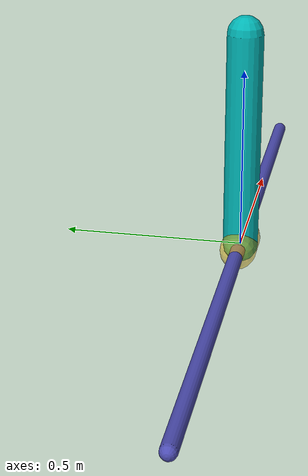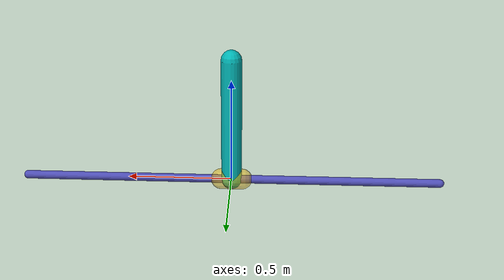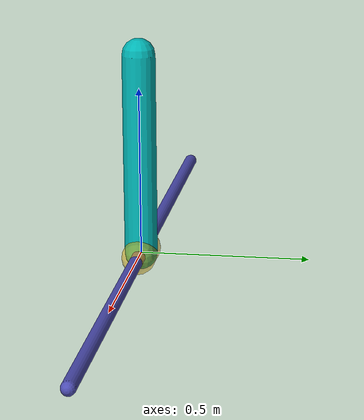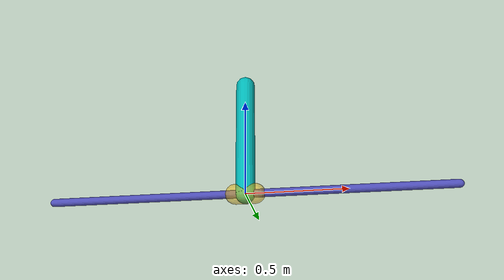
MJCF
<mujoco model="inverted pendulum">
	<compiler inertiafromgeom="true" />
	<default>
		<joint armature="0" damping="1" limited="true" />
		<geom contype="0" friction="9 9 9" rgba="0.9 0.7 0 0.5" />
		<tendon />
		<motor ctrlrange="-3 3" />
	</default>

	<visual>
		<headlight diffuse="0.6 0.6 0.6" ambient="0.8 0.8 0.8" specular="0 0 0" />
		<rgba haze="0.35 0.35 0.35 1" />
		<global azimuth="150" elevation="-20" />
	</visual>
	<option gravity="0 0 -9.81" integrator="implicitfast" timestep="0.02" />
	<size nstack="3000" />
	<worldbody>
		<!-- light name="to2" pos="-1 -1 0" specular="1 1 1" diffuse="9 9 9" dir="1 1 0"/ -->
		<!--geom
		name="ground" type="plane" pos="0 0 0" /-->
		<geom name="rail" pos="0 0 0" quat="0.707 0 0.707 0" rgba="0.3 0.3 0.7 1" size="0.02 1"
			type="capsule" />
		<body name="cart" pos="0 0 0">
			<joint axis="1 0 0" limited="true" name="slider" pos="0 0 0" range="-1 1" type="slide" />
			<geom name="cart" pos="0 0 0" quat="0.707 0 0.707 0" size="0.05 0.05" type="capsule" />
			<body name="pole" pos="0 0 0">
				<joint axis="1 0 1" name="hinge" pos="0 0 0.01" range="-90 90" type="hinge" />
				<geom fromto="0 0 0 0.001 0 0.6" name="cpole" rgba="0 0.7 0.7 1" size="0.049 0.3"
					type="capsule" />
			</body>
		</body>
	</worldbody>
	<actuator>
		<motor ctrllimited="true" ctrlrange="-3 3" gear="100" joint="slider" name="slide" />
	</actuator>
</mujoco>
